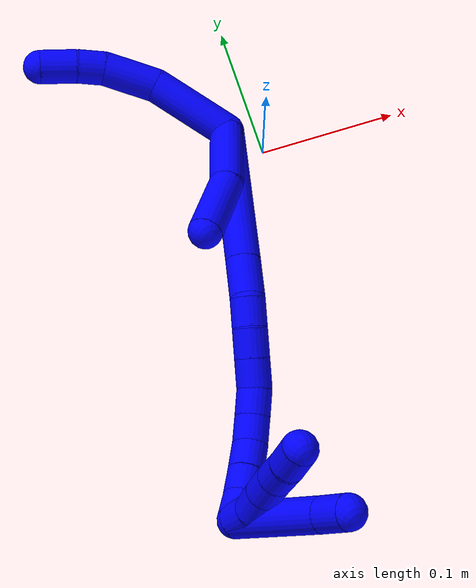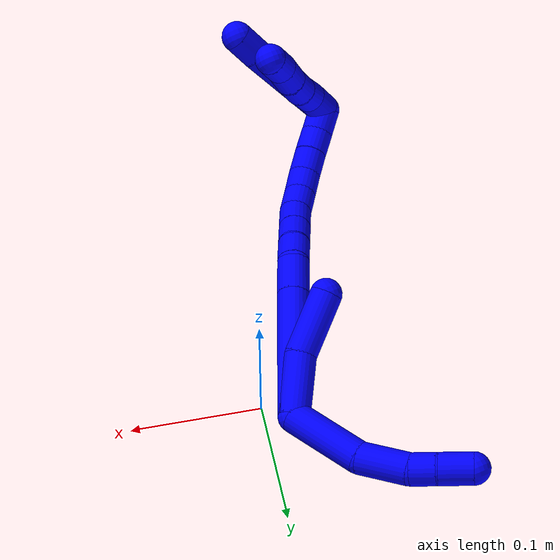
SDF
<sdf version="1.7">
 <world name="default">
  <model name="1">
   <static>0</static>
   <link name="1">
    <collision name="collision-cylinder-e_1_2_8">
     <pose>-0.013744 0.01539 -0.023625 -2.5642 -0.453554 1.32105</pose>
     <geometry><cylinder><radius>0.0125</radius><length>0.062734</length></cylinder></geometry>
     <surface>
      <friction><ode><mu>1.16</mu><mu2>1.16</mu2><slip1>0</slip1><slip2>0</slip2></ode></friction>
      <contact><ode><kp>1e+06</kp><kd>1</kd><max_vel>0</max_vel><min_depth>0.001</min_depth></ode></contact>
     </surface>
    </collision>
    <visual name="visual-cylinder-e_1_2_8">
     <pose>-0.013744 0.01539 -0.023625 -2.5642 -0.453554 1.32105</pose>
     <geometry><cylinder><radius>0.0125</radius><length>0.062734</length></cylinder></geometry>
     <material><ambient>0 0 1 1</ambient></material>
    </visual>
    <collision name="collision-cylinder-e_2_8_9">
     <pose>-0.0413 0.040262 -0.058264 -2.43081 -0.759963 1.64407</pose>
     <geometry><cylinder><radius>0.0125</radius><length>0.0401</length></cylinder></geometry>
     <surface>
      <friction><ode><mu>1.16</mu><mu2>1.16</mu2><slip1>0</slip1><slip2>0</slip2></ode></friction>
      <contact><ode><kp>1e+06</kp><kd>1</kd><max_vel>0</max_vel><min_depth>0.001</min_depth></ode></contact>
     </surface>
    </collision>
    <visual name="visual-cylinder-e_2_8_9">
     <pose>-0.0413 0.040262 -0.058264 -2.43081 -0.759963 1.64407</pose>
     <geometry><cylinder><radius>0.0125</radius><length>0.0401</length></cylinder></geometry>
     <material><ambient>0 0 1 1</ambient></material>
    </visual>
    <collision name="collision-cylinder-e_3_9_10">
     <pose>-0.063747 0.053569 -0.072931 -2.33311 -1.02124 1.83717</pose>
     <geometry><cylinder><radius>0.0125</radius><length>0.020252</length></cylinder></geometry>
     <surface>
      <friction><ode><mu>1.16</mu><mu2>1.16</mu2><slip1>0</slip1><slip2>0</slip2></ode></friction>
      <contact><ode><kp>1e+06</kp><kd>1</kd><max_vel>0</max_vel><min_depth>0.001</min_depth></ode></contact>
     </surface>
    </collision>
    <visual name="visual-cylinder-e_3_9_10">
     <pose>-0.063747 0.053569 -0.072931 -2.33311 -1.02124 1.83717</pose>
     <geometry><cylinder><radius>0.0125</radius><length>0.020252</length></cylinder></geometry>
     <material><ambient>0 0 1 1</ambient></material>
    </visual>
    <collision name="collision-cylinder-e_4_10_6">
     <pose>-0.084388 0.060916 -0.081539 -2.52391 -1.10203 2.18381</pose>
     <geometry><cylinder><radius>0.0125</radius><length>0.026914</length></cylinder></geometry>
     <surface>
      <friction><ode><mu>1.16</mu><mu2>1.16</mu2><slip1>0</slip1><slip2>0</slip2></ode></friction>
      <contact><ode><kp>1e+06</kp><kd>1</kd><max_vel>0</max_vel><min_depth>0.001</min_depth></ode></contact>
     </surface>
    </collision>
    <visual name="visual-cylinder-e_4_10_6">
     <pose>-0.084388 0.060916 -0.081539 -2.52391 -1.10203 2.18381</pose>
     <geometry><cylinder><radius>0.0125</radius><length>0.026914</length></cylinder></geometry>
     <material><ambient>0 0 1 1</ambient></material>
    </visual>
    <collision name="collision-cylinder-e_1_2_11">
     <pose>-0.012299 -0.004517 0.020655 0.21531 -0.526851 -0.058277</pose>
     <geometry><cylinder><radius>0.0125</radius><length>0.04892</length></cylinder></geometry>
     <surface>
      <friction><ode><mu>1.16</mu><mu2>1.16</mu2><slip1>0</slip1><slip2>0</slip2></ode></friction>
      <contact><ode><kp>1e+06</kp><kd>1</kd><max_vel>0</max_vel><min_depth>0.001</min_depth></ode></contact>
     </surface>
    </collision>
    <visual name="visual-cylinder-e_1_2_11">
     <pose>-0.012299 -0.004517 0.020655 0.21531 -0.526851 -0.058277</pose>
     <geometry><cylinder><radius>0.0125</radius><length>0.04892</length></cylinder></geometry>
     <material><ambient>0 0 1 1</ambient></material>
    </visual>
    <collision name="collision-cylinder-e_2_11_5">
     <pose>-0.0429 -0.009005 0.059123 -0.001628 -0.798928 0.000687</pose>
     <geometry><cylinder><radius>0.0125</radius><length>0.05108</length></cylinder></geometry>
     <surface>
      <friction><ode><mu>1.16</mu><mu2>1.16</mu2><slip1>0</slip1><slip2>0</slip2></ode></friction>
      <contact><ode><kp>1e+06</kp><kd>1</kd><max_vel>0</max_vel><min_depth>0.001</min_depth></ode></contact>
     </surface>
    </collision>
    <visual name="visual-cylinder-e_2_11_5">
     <pose>-0.0429 -0.009005 0.059123 -0.001628 -0.798928 0.000687</pose>
     <geometry><cylinder><radius>0.0125</radius><length>0.05108</length></cylinder></geometry>
     <material><ambient>0 0 1 1</ambient></material>
    </visual>
    <collision name="collision-cylinder-e_1_2_12">
     <pose>-0.022212 -0.020125 0.044117 0.427974 -0.429546 -0.094738</pose>
     <geometry><cylinder><radius>0.0125</radius><length>0.106671</length></cylinder></geometry>
     <surface>
      <friction><ode><mu>1.16</mu><mu2>1.16</mu2><slip1>0</slip1><slip2>0</slip2></ode></friction>
      <contact><ode><kp>1e+06</kp><kd>1</kd><max_vel>0</max_vel><min_depth>0.001</min_depth></ode></contact>
     </surface>
    </collision>
    <visual name="visual-cylinder-e_1_2_12">
     <pose>-0.022212 -0.020125 0.044117 0.427974 -0.429546 -0.094738</pose>
     <geometry><cylinder><radius>0.0125</radius><length>0.106671</length></cylinder></geometry>
     <material><ambient>0 0 1 1</ambient></material>
    </visual>
    <collision name="collision-cylinder-e_2_12_13">
     <pose>-0.050655 -0.04567 0.100474 0.416855 -0.435619 -0.09355</pose>
     <geometry><cylinder><radius>0.0125</radius><length>0.029533</length></cylinder></geometry>
     <surface>
      <friction><ode><mu>1.16</mu><mu2>1.16</mu2><slip1>0</slip1><slip2>0</slip2></ode></friction>
      <contact><ode><kp>1e+06</kp><kd>1</kd><max_vel>0</max_vel><min_depth>0.001</min_depth></ode></contact>
     </surface>
    </collision>
    <visual name="visual-cylinder-e_2_12_13">
     <pose>-0.050655 -0.04567 0.100474 0.416855 -0.435619 -0.09355</pose>
     <geometry><cylinder><radius>0.0125</radius><length>0.029533</length></cylinder></geometry>
     <material><ambient>0 0 1 1</ambient></material>
    </visual>
    <collision name="collision-cylinder-e_3_13_14">
     <pose>-0.061394 -0.057466 0.119731 0.737634 -0.443848 -0.173981</pose>
     <geometry><cylinder><radius>0.0125</radius><length>0.020996</length></cylinder></geometry>
     <surface>
      <friction><ode><mu>1.16</mu><mu2>1.16</mu2><slip1>0</slip1><slip2>0</slip2></ode></friction>
      <contact><ode><kp>1e+06</kp><kd>1</kd><max_vel>0</max_vel><min_depth>0.001</min_depth></ode></contact>
     </surface>
    </collision>
    <visual name="visual-cylinder-e_3_13_14">
     <pose>-0.061394 -0.057466 0.119731 0.737634 -0.443848 -0.173981</pose>
     <geometry><cylinder><radius>0.0125</radius><length>0.020996</length></cylinder></geometry>
     <material><ambient>0 0 1 1</ambient></material>
    </visual>
    <collision name="collision-cylinder-e_4_14_15">
     <pose>-0.070243 -0.07121 0.133047 0.863428 -0.421112 -0.196291</pose>
     <geometry><cylinder><radius>0.0125</radius><length>0.021241</length></cylinder></geometry>
     <surface>
      <friction><ode><mu>1.16</mu><mu2>1.16</mu2><slip1>0</slip1><slip2>0</slip2></ode></friction>
      <contact><ode><kp>1e+06</kp><kd>1</kd><max_vel>0</max_vel><min_depth>0.001</min_depth></ode></contact>
     </surface>
    </collision>
    <visual name="visual-cylinder-e_4_14_15">
     <pose>-0.070243 -0.07121 0.133047 0.863428 -0.421112 -0.196291</pose>
     <geometry><cylinder><radius>0.0125</radius><length>0.021241</length></cylinder></geometry>
     <material><ambient>0 0 1 1</ambient></material>
    </visual>
    <collision name="collision-cylinder-e_5_15_16">
     <pose>-0.078982 -0.085892 0.14581 0.847011 -0.423193 -0.193065</pose>
     <geometry><cylinder><radius>0.0125</radius><length>0.021412</length></cylinder></geometry>
     <surface>
      <friction><ode><mu>1.16</mu><mu2>1.16</mu2><slip1>0</slip1><slip2>0</slip2></ode></friction>
      <contact><ode><kp>1e+06</kp><kd>1</kd><max_vel>0</max_vel><min_depth>0.001</min_depth></ode></contact>
     </surface>
    </collision>
    <visual name="visual-cylinder-e_5_15_16">
     <pose>-0.078982 -0.085892 0.14581 0.847011 -0.423193 -0.193065</pose>
     <geometry><cylinder><radius>0.0125</radius><length>0.021412</length></cylinder></geometry>
     <material><ambient>0 0 1 1</ambient></material>
    </visual>
    <collision name="collision-cylinder-e_6_16_17">
     <pose>-0.089089 -0.098244 0.158824 0.65565 -0.604762 -0.211394</pose>
     <geometry><cylinder><radius>0.0125</radius><length>0.02009</length></cylinder></geometry>
     <surface>
      <friction><ode><mu>1.16</mu><mu2>1.16</mu2><slip1>0</slip1><slip2>0</slip2></ode></friction>
      <contact><ode><kp>1e+06</kp><kd>1</kd><max_vel>0</max_vel><min_depth>0.001</min_depth></ode></contact>
     </surface>
    </collision>
    <visual name="visual-cylinder-e_6_16_17">
     <pose>-0.089089 -0.098244 0.158824 0.65565 -0.604762 -0.211394</pose>
     <geometry><cylinder><radius>0.0125</radius><length>0.02009</length></cylinder></geometry>
     <material><ambient>0 0 1 1</ambient></material>
    </visual>
    <collision name="collision-cylinder-e_7_17_18">
     <pose>-0.100634 -0.107338 0.172439 0.521148 -0.621449 -0.170831</pose>
     <geometry><cylinder><radius>0.0125</radius><length>0.020038</length></cylinder></geometry>
     <surface>
      <friction><ode><mu>1.16</mu><mu2>1.16</mu2><slip1>0</slip1><slip2>0</slip2></ode></friction>
      <contact><ode><kp>1e+06</kp><kd>1</kd><max_vel>0</max_vel><min_depth>0.001</min_depth></ode></contact>
     </surface>
    </collision>
    <visual name="visual-cylinder-e_7_17_18">
     <pose>-0.100634 -0.107338 0.172439 0.521148 -0.621449 -0.170831</pose>
     <geometry><cylinder><radius>0.0125</radius><length>0.020038</length></cylinder></geometry>
     <material><ambient>0 0 1 1</ambient></material>
    </visual>
    <collision name="collision-cylinder-e_8_18_19">
     <pose>-0.11274 -0.113318 0.187056 0.249557 -0.677697 -0.088356</pose>
     <geometry><cylinder><radius>0.0125</radius><length>0.02001</length></cylinder></geometry>
     <surface>
      <friction><ode><mu>1.16</mu><mu2>1.16</mu2><slip1>0</slip1><slip2>0</slip2></ode></friction>
      <contact><ode><kp>1e+06</kp><kd>1</kd><max_vel>0</max_vel><min_depth>0.001</min_depth></ode></contact>
     </surface>
    </collision>
    <visual name="visual-cylinder-e_8_18_19">
     <pose>-0.11274 -0.113318 0.187056 0.249557 -0.677697 -0.088356</pose>
     <geometry><cylinder><radius>0.0125</radius><length>0.02001</length></cylinder></geometry>
     <material><ambient>0 0 1 1</ambient></material>
    </visual>
    <collision name="collision-cylinder-e_9_19_20">
     <pose>-0.125511 -0.117426 0.201891 0.291185 -0.707163 -0.108135</pose>
     <geometry><cylinder><radius>0.0125</radius><length>0.020002</length></cylinder></geometry>
     <surface>
      <friction><ode><mu>1.16</mu><mu2>1.16</mu2><slip1>0</slip1><slip2>0</slip2></ode></friction>
      <contact><ode><kp>1e+06</kp><kd>1</kd><max_vel>0</max_vel><min_depth>0.001</min_depth></ode></contact>
     </surface>
    </collision>
    <visual name="visual-cylinder-e_9_19_20">
     <pose>-0.125511 -0.117426 0.201891 0.291185 -0.707163 -0.108135</pose>
     <geometry><cylinder><radius>0.0125</radius><length>0.020002</length></cylinder></geometry>
     <material><ambient>0 0 1 1</ambient></material>
    </visual>
    <collision name="collision-cylinder-e_10_20_1">
     <pose>-0.138369 -0.119261 0.216887 -0.044993 -0.689124 0.016149</pose>
     <geometry><cylinder><radius>0.0125</radius><length>0.020007</length></cylinder></geometry>
     <surface>
      <friction><ode><mu>1.16</mu><mu2>1.16</mu2><slip1>0</slip1><slip2>0</slip2></ode></friction>
      <contact><ode><kp>1e+06</kp><kd>1</kd><max_vel>0</max_vel><min_depth>0.001</min_depth></ode></contact>
     </surface>
    </collision>
    <visual name="visual-cylinder-e_10_20_1">
     <pose>-0.138369 -0.119261 0.216887 -0.044993 -0.689124 0.016149</pose>
     <geometry><cylinder><radius>0.0125</radius><length>0.020007</length></cylinder></geometry>
     <material><ambient>0 0 1 1</ambient></material>
    </visual>
    <collision name="collision-cylinder-e_1_1_21">
     <pose>-0.13983 -0.112357 0.230344 -0.851418 0.512086 -0.236304</pose>
     <geometry><cylinder><radius>0.0125</radius><length>0.02</length></cylinder></geometry>
     <surface>
      <friction><ode><mu>1.16</mu><mu2>1.16</mu2><slip1>0</slip1><slip2>0</slip2></ode></friction>
      <contact><ode><kp>1e+06</kp><kd>1</kd><max_vel>0</max_vel><min_depth>0.001</min_depth></ode></contact>
     </surface>
    </collision>
    <visual name="visual-cylinder-e_1_1_21">
     <pose>-0.13983 -0.112357 0.230344 -0.851418 0.512086 -0.236304</pose>
     <geometry><cylinder><radius>0.0125</radius><length>0.02</length></cylinder></geometry>
     <material><ambient>0 0 1 1</ambient></material>
    </visual>
    <collision name="collision-cylinder-e_2_21_22">
     <pose>-0.13006 -0.097547 0.238948 -1.23718 0.50864 -0.365917</pose>
     <geometry><cylinder><radius>0.0125</radius><length>0.02</length></cylinder></geometry>
     <surface>
      <friction><ode><mu>1.16</mu><mu2>1.16</mu2><slip1>0</slip1><slip2>0</slip2></ode></friction>
      <contact><ode><kp>1e+06</kp><kd>1</kd><max_vel>0</max_vel><min_depth>0.001</min_depth></ode></contact>
     </surface>
    </collision>
    <visual name="visual-cylinder-e_2_21_22">
     <pose>-0.13006 -0.097547 0.238948 -1.23718 0.50864 -0.365917</pose>
     <geometry><cylinder><radius>0.0125</radius><length>0.02</length></cylinder></geometry>
     <material><ambient>0 0 1 1</ambient></material>
    </visual>
    <collision name="collision-cylinder-e_3_22_23">
     <pose>-0.120867 -0.081127 0.245629 -1.13316 0.447075 -0.287251</pose>
     <geometry><cylinder><radius>0.0125</radius><length>0.02</length></cylinder></geometry>
     <surface>
      <friction><ode><mu>1.16</mu><mu2>1.16</mu2><slip1>0</slip1><slip2>0</slip2></ode></friction>
      <contact><ode><kp>1e+06</kp><kd>1</kd><max_vel>0</max_vel><min_depth>0.001</min_depth></ode></contact>
     </surface>
    </collision>
    <visual name="visual-cylinder-e_3_22_23">
     <pose>-0.120867 -0.081127 0.245629 -1.13316 0.447075 -0.287251</pose>
     <geometry><cylinder><radius>0.0125</radius><length>0.02</length></cylinder></geometry>
     <material><ambient>0 0 1 1</ambient></material>
    </visual>
    <collision name="collision-cylinder-e_4_23_24">
     <pose>-0.112856 -0.064922 0.25412 -1.04454 0.377687 -0.219129</pose>
     <geometry><cylinder><radius>0.0125</radius><length>0.02</length></cylinder></geometry>
     <surface>
      <friction><ode><mu>1.16</mu><mu2>1.16</mu2><slip1>0</slip1><slip2>0</slip2></ode></friction>
      <contact><ode><kp>1e+06</kp><kd>1</kd><max_vel>0</max_vel><min_depth>0.001</min_depth></ode></contact>
     </surface>
    </collision>
    <visual name="visual-cylinder-e_4_23_24">
     <pose>-0.112856 -0.064922 0.25412 -1.04454 0.377687 -0.219129</pose>
     <geometry><cylinder><radius>0.0125</radius><length>0.02</length></cylinder></geometry>
     <material><ambient>0 0 1 1</ambient></material>
    </visual>
    <collision name="collision-cylinder-e_5_24_4">
     <pose>-0.104659 -0.048707 0.262365 -1.15852 0.467745 -0.309174</pose>
     <geometry><cylinder><radius>0.0125</radius><length>0.02</length></cylinder></geometry>
     <surface>
      <friction><ode><mu>1.16</mu><mu2>1.16</mu2><slip1>0</slip1><slip2>0</slip2></ode></friction>
      <contact><ode><kp>1e+06</kp><kd>1</kd><max_vel>0</max_vel><min_depth>0.001</min_depth></ode></contact>
     </surface>
    </collision>
    <visual name="visual-cylinder-e_5_24_4">
     <pose>-0.104659 -0.048707 0.262365 -1.15852 0.467745 -0.309174</pose>
     <geometry><cylinder><radius>0.0125</radius><length>0.02</length></cylinder></geometry>
     <material><ambient>0 0 1 1</ambient></material>
    </visual>
    <collision name="collision-cylinder-e_1_1_25">
     <pose>-0.123845 -0.103707 0.25329 -0.48739 0.571583 -0.145857</pose>
     <geometry><cylinder><radius>0.0125</radius><length>0.077215</length></cylinder></geometry>
     <surface>
      <friction><ode><mu>1.16</mu><mu2>1.16</mu2><slip1>0</slip1><slip2>0</slip2></ode></friction>
      <contact><ode><kp>1e+06</kp><kd>1</kd><max_vel>0</max_vel><min_depth>0.001</min_depth></ode></contact>
     </surface>
    </collision>
    <visual name="visual-cylinder-e_1_1_25">
     <pose>-0.123845 -0.103707 0.25329 -0.48739 0.571583 -0.145857</pose>
     <geometry><cylinder><radius>0.0125</radius><length>0.077215</length></cylinder></geometry>
     <material><ambient>0 0 1 1</ambient></material>
    </visual>
    <collision name="collision-cylinder-e_2_25_3">
     <pose>-0.097186 -0.083448 0.290401 -0.540414 0.531416 -0.150472</pose>
     <geometry><cylinder><radius>0.0125</radius><length>0.022785</length></cylinder></geometry>
     <surface>
      <friction><ode><mu>1.16</mu><mu2>1.16</mu2><slip1>0</slip1><slip2>0</slip2></ode></friction>
      <contact><ode><kp>1e+06</kp><kd>1</kd><max_vel>0</max_vel><min_depth>0.001</min_depth></ode></contact>
     </surface>
    </collision>
    <visual name="visual-cylinder-e_2_25_3">
     <pose>-0.097186 -0.083448 0.290401 -0.540414 0.531416 -0.150472</pose>
     <geometry><cylinder><radius>0.0125</radius><length>0.022785</length></cylinder></geometry>
     <material><ambient>0 0 1 1</ambient></material>
    </visual>
    <collision name="collision-sphere-3">
     <pose>-0.091413 -0.078395 0.298823 0 -0 0</pose>
     <geometry><sphere><radius>0.0125</radius></sphere></geometry>
     <surface>
      <friction><ode><mu>1.16</mu><mu2>1.16</mu2><slip1>0</slip1><slip2>0</slip2></ode></friction>
      <contact><ode><kp>1e+06</kp><kd>1</kd><max_vel>0</max_vel><min_depth>0.001</min_depth></ode></contact>
     </surface>
    </collision>
    <visual name="visual-sphere-3">
     <pose>-0.091413 -0.078395 0.298823 0 -0 0</pose>
     <geometry><sphere><radius>0.0125</radius></sphere></geometry>
     <material><ambient>0 0 1 1</ambient></material>
    </visual>
    <collision name="collision-sphere-25">
     <pose>-0.102959 -0.0885 0.281979 0 -0 0</pose>
     <geometry><sphere><radius>0.0125</radius></sphere></geometry>
     <surface>
      <friction><ode><mu>1.16</mu><mu2>1.16</mu2><slip1>0</slip1><slip2>0</slip2></ode></friction>
      <contact><ode><kp>1e+06</kp><kd>1</kd><max_vel>0</max_vel><min_depth>0.001</min_depth></ode></contact>
     </surface>
    </collision>
    <visual name="visual-sphere-25">
     <pose>-0.102959 -0.0885 0.281979 0 -0 0</pose>
     <geometry><sphere><radius>0.0125</radius></sphere></geometry>
     <material><ambient>0 0 1 1</ambient></material>
    </visual>
    <collision name="collision-sphere-4">
     <pose>-0.100151 -0.040529 0.265942 0 -0 0</pose>
     <geometry><sphere><radius>0.0125</radius></sphere></geometry>
     <surface>
      <friction><ode><mu>1.16</mu><mu2>1.16</mu2><slip1>0</slip1><slip2>0</slip2></ode></friction>
      <contact><ode><kp>1e+06</kp><kd>1</kd><max_vel>0</max_vel><min_depth>0.001</min_depth></ode></contact>
     </surface>
    </collision>
    <visual name="visual-sphere-4">
     <pose>-0.100151 -0.040529 0.265942 0 -0 0</pose>
     <geometry><sphere><radius>0.0125</radius></sphere></geometry>
     <material><ambient>0 0 1 1</ambient></material>
    </visual>
    <collision name="collision-sphere-24">
     <pose>-0.109168 -0.056885 0.258789 0 -0 0</pose>
     <geometry><sphere><radius>0.0125</radius></sphere></geometry>
     <surface>
      <friction><ode><mu>1.16</mu><mu2>1.16</mu2><slip1>0</slip1><slip2>0</slip2></ode></friction>
      <contact><ode><kp>1e+06</kp><kd>1</kd><max_vel>0</max_vel><min_depth>0.001</min_depth></ode></contact>
     </surface>
    </collision>
    <visual name="visual-sphere-24">
     <pose>-0.109168 -0.056885 0.258789 0 -0 0</pose>
     <geometry><sphere><radius>0.0125</radius></sphere></geometry>
     <material><ambient>0 0 1 1</ambient></material>
    </visual>
    <collision name="collision-sphere-23">
     <pose>-0.116544 -0.07296 0.249451 0 -0 0</pose>
     <geometry><sphere><radius>0.0125</radius></sphere></geometry>
     <surface>
      <friction><ode><mu>1.16</mu><mu2>1.16</mu2><slip1>0</slip1><slip2>0</slip2></ode></friction>
      <contact><ode><kp>1e+06</kp><kd>1</kd><max_vel>0</max_vel><min_depth>0.001</min_depth></ode></contact>
     </surface>
    </collision>
    <visual name="visual-sphere-23">
     <pose>-0.116544 -0.07296 0.249451 0 -0 0</pose>
     <geometry><sphere><radius>0.0125</radius></sphere></geometry>
     <material><ambient>0 0 1 1</ambient></material>
    </visual>
    <collision name="collision-sphere-22">
     <pose>-0.12519 -0.089295 0.241808 0 -0 0</pose>
     <geometry><sphere><radius>0.0125</radius></sphere></geometry>
     <surface>
      <friction><ode><mu>1.16</mu><mu2>1.16</mu2><slip1>0</slip1><slip2>0</slip2></ode></friction>
      <contact><ode><kp>1e+06</kp><kd>1</kd><max_vel>0</max_vel><min_depth>0.001</min_depth></ode></contact>
     </surface>
    </collision>
    <visual name="visual-sphere-22">
     <pose>-0.12519 -0.089295 0.241808 0 -0 0</pose>
     <geometry><sphere><radius>0.0125</radius></sphere></geometry>
     <material><ambient>0 0 1 1</ambient></material>
    </visual>
    <collision name="collision-sphere-21">
     <pose>-0.13493 -0.1058 0.236088 0 -0 0</pose>
     <geometry><sphere><radius>0.0125</radius></sphere></geometry>
     <surface>
      <friction><ode><mu>1.16</mu><mu2>1.16</mu2><slip1>0</slip1><slip2>0</slip2></ode></friction>
      <contact><ode><kp>1e+06</kp><kd>1</kd><max_vel>0</max_vel><min_depth>0.001</min_depth></ode></contact>
     </surface>
    </collision>
    <visual name="visual-sphere-21">
     <pose>-0.13493 -0.1058 0.236088 0 -0 0</pose>
     <geometry><sphere><radius>0.0125</radius></sphere></geometry>
     <material><ambient>0 0 1 1</ambient></material>
    </visual>
    <collision name="collision-sphere-1">
     <pose>-0.14473 -0.118914 0.2246 0 -0 0</pose>
     <geometry><sphere><radius>0.0125</radius></sphere></geometry>
     <surface>
      <friction><ode><mu>1.16</mu><mu2>1.16</mu2><slip1>0</slip1><slip2>0</slip2></ode></friction>
      <contact><ode><kp>1e+06</kp><kd>1</kd><max_vel>0</max_vel><min_depth>0.001</min_depth></ode></contact>
     </surface>
    </collision>
    <visual name="visual-sphere-1">
     <pose>-0.14473 -0.118914 0.2246 0 -0 0</pose>
     <geometry><sphere><radius>0.0125</radius></sphere></geometry>
     <material><ambient>0 0 1 1</ambient></material>
    </visual>
    <collision name="collision-sphere-11">
     <pose>-0.024597 -0.009034 0.041309 0 -0 0</pose>
     <geometry><sphere><radius>0.0125</radius></sphere></geometry>
     <surface>
      <friction><ode><mu>1.16</mu><mu2>1.16</mu2><slip1>0</slip1><slip2>0</slip2></ode></friction>
      <contact><ode><kp>1e+06</kp><kd>1</kd><max_vel>0</max_vel><min_depth>0.001</min_depth></ode></contact>
     </surface>
    </collision>
    <visual name="visual-sphere-11">
     <pose>-0.024597 -0.009034 0.041309 0 -0 0</pose>
     <geometry><sphere><radius>0.0125</radius></sphere></geometry>
     <material><ambient>0 0 1 1</ambient></material>
    </visual>
    <collision name="collision-sphere-6">
     <pose>-0.096393 0.064437 -0.086496 0 -0 0</pose>
     <geometry><sphere><radius>0.0125</radius></sphere></geometry>
     <surface>
      <friction><ode><mu>1.16</mu><mu2>1.16</mu2><slip1>0</slip1><slip2>0</slip2></ode></friction>
      <contact><ode><kp>1e+06</kp><kd>1</kd><max_vel>0</max_vel><min_depth>0.001</min_depth></ode></contact>
     </surface>
    </collision>
    <visual name="visual-sphere-6">
     <pose>-0.096393 0.064437 -0.086496 0 -0 0</pose>
     <geometry><sphere><radius>0.0125</radius></sphere></geometry>
     <material><ambient>0 0 1 1</ambient></material>
    </visual>
    <collision name="collision-sphere-10">
     <pose>-0.072382 0.057395 -0.076583 0 -0 0</pose>
     <geometry><sphere><radius>0.0125</radius></sphere></geometry>
     <surface>
      <friction><ode><mu>1.16</mu><mu2>1.16</mu2><slip1>0</slip1><slip2>0</slip2></ode></friction>
      <contact><ode><kp>1e+06</kp><kd>1</kd><max_vel>0</max_vel><min_depth>0.001</min_depth></ode></contact>
     </surface>
    </collision>
    <visual name="visual-sphere-10">
     <pose>-0.072382 0.057395 -0.076583 0 -0 0</pose>
     <geometry><sphere><radius>0.0125</radius></sphere></geometry>
     <material><ambient>0 0 1 1</ambient></material>
    </visual>
    <collision name="collision-sphere-9">
     <pose>-0.055112 0.049744 -0.069278 0 -0 0</pose>
     <geometry><sphere><radius>0.0125</radius></sphere></geometry>
     <surface>
      <friction><ode><mu>1.16</mu><mu2>1.16</mu2><slip1>0</slip1><slip2>0</slip2></ode></friction>
      <contact><ode><kp>1e+06</kp><kd>1</kd><max_vel>0</max_vel><min_depth>0.001</min_depth></ode></contact>
     </surface>
    </collision>
    <visual name="visual-sphere-9">
     <pose>-0.055112 0.049744 -0.069278 0 -0 0</pose>
     <geometry><sphere><radius>0.0125</radius></sphere></geometry>
     <material><ambient>0 0 1 1</ambient></material>
    </visual>
    <collision name="collision-sphere-2">
     <geometry><sphere><radius>0.0125</radius></sphere></geometry>
     <surface>
      <friction><ode><mu>1.16</mu><mu2>1.16</mu2><slip1>0</slip1><slip2>0</slip2></ode></friction>
      <contact><ode><kp>1e+06</kp><kd>1</kd><max_vel>0</max_vel><min_depth>0.001</min_depth></ode></contact>
     </surface>
    </collision>
    <visual name="visual-sphere-2">
     <geometry><sphere><radius>0.0125</radius></sphere></geometry>
     <material><ambient>0 0 1 1</ambient></material>
    </visual>
    <collision name="collision-sphere-19">
     <pose>-0.119014 -0.115243 0.194609 0 -0 0</pose>
     <geometry><sphere><radius>0.0125</radius></sphere></geometry>
     <surface>
      <friction><ode><mu>1.16</mu><mu2>1.16</mu2><slip1>0</slip1><slip2>0</slip2></ode></friction>
      <contact><ode><kp>1e+06</kp><kd>1</kd><max_vel>0</max_vel><min_depth>0.001</min_depth></ode></contact>
     </surface>
    </collision>
    <visual name="visual-sphere-19">
     <pose>-0.119014 -0.115243 0.194609 0 -0 0</pose>
     <geometry><sphere><radius>0.0125</radius></sphere></geometry>
     <material><ambient>0 0 1 1</ambient></material>
    </visual>
    <collision name="collision-sphere-8">
     <pose>-0.027488 0.03078 -0.04725 0 -0 0</pose>
     <geometry><sphere><radius>0.0125</radius></sphere></geometry>
     <surface>
      <friction><ode><mu>1.16</mu><mu2>1.16</mu2><slip1>0</slip1><slip2>0</slip2></ode></friction>
      <contact><ode><kp>1e+06</kp><kd>1</kd><max_vel>0</max_vel><min_depth>0.001</min_depth></ode></contact>
     </surface>
    </collision>
    <visual name="visual-sphere-8">
     <pose>-0.027488 0.03078 -0.04725 0 -0 0</pose>
     <geometry><sphere><radius>0.0125</radius></sphere></geometry>
     <material><ambient>0 0 1 1</ambient></material>
    </visual>
    <collision name="collision-sphere-5">
     <pose>-0.061202 -0.008976 0.076937 0 -0 0</pose>
     <geometry><sphere><radius>0.0125</radius></sphere></geometry>
     <surface>
      <friction><ode><mu>1.16</mu><mu2>1.16</mu2><slip1>0</slip1><slip2>0</slip2></ode></friction>
      <contact><ode><kp>1e+06</kp><kd>1</kd><max_vel>0</max_vel><min_depth>0.001</min_depth></ode></contact>
     </surface>
    </collision>
    <visual name="visual-sphere-5">
     <pose>-0.061202 -0.008976 0.076937 0 -0 0</pose>
     <geometry><sphere><radius>0.0125</radius></sphere></geometry>
     <material><ambient>0 0 1 1</ambient></material>
    </visual>
    <collision name="collision-sphere-12">
     <pose>-0.044424 -0.040249 0.088233 0 -0 0</pose>
     <geometry><sphere><radius>0.0125</radius></sphere></geometry>
     <surface>
      <friction><ode><mu>1.16</mu><mu2>1.16</mu2><slip1>0</slip1><slip2>0</slip2></ode></friction>
      <contact><ode><kp>1e+06</kp><kd>1</kd><max_vel>0</max_vel><min_depth>0.001</min_depth></ode></contact>
     </surface>
    </collision>
    <visual name="visual-sphere-12">
     <pose>-0.044424 -0.040249 0.088233 0 -0 0</pose>
     <geometry><sphere><radius>0.0125</radius></sphere></geometry>
     <material><ambient>0 0 1 1</ambient></material>
    </visual>
    <collision name="collision-sphere-13">
     <pose>-0.056886 -0.05109 0.112715 0 -0 0</pose>
     <geometry><sphere><radius>0.0125</radius></sphere></geometry>
     <surface>
      <friction><ode><mu>1.16</mu><mu2>1.16</mu2><slip1>0</slip1><slip2>0</slip2></ode></friction>
      <contact><ode><kp>1e+06</kp><kd>1</kd><max_vel>0</max_vel><min_depth>0.001</min_depth></ode></contact>
     </surface>
    </collision>
    <visual name="visual-sphere-13">
     <pose>-0.056886 -0.05109 0.112715 0 -0 0</pose>
     <geometry><sphere><radius>0.0125</radius></sphere></geometry>
     <material><ambient>0 0 1 1</ambient></material>
    </visual>
    <collision name="collision-sphere-14">
     <pose>-0.065902 -0.063843 0.126748 0 -0 0</pose>
     <geometry><sphere><radius>0.0125</radius></sphere></geometry>
     <surface>
      <friction><ode><mu>1.16</mu><mu2>1.16</mu2><slip1>0</slip1><slip2>0</slip2></ode></friction>
      <contact><ode><kp>1e+06</kp><kd>1</kd><max_vel>0</max_vel><min_depth>0.001</min_depth></ode></contact>
     </surface>
    </collision>
    <visual name="visual-sphere-14">
     <pose>-0.065902 -0.063843 0.126748 0 -0 0</pose>
     <geometry><sphere><radius>0.0125</radius></sphere></geometry>
     <material><ambient>0 0 1 1</ambient></material>
    </visual>
    <collision name="collision-sphere-15">
     <pose>-0.074585 -0.078577 0.139345 0 -0 0</pose>
     <geometry><sphere><radius>0.0125</radius></sphere></geometry>
     <surface>
      <friction><ode><mu>1.16</mu><mu2>1.16</mu2><slip1>0</slip1><slip2>0</slip2></ode></friction>
      <contact><ode><kp>1e+06</kp><kd>1</kd><max_vel>0</max_vel><min_depth>0.001</min_depth></ode></contact>
     </surface>
    </collision>
    <visual name="visual-sphere-15">
     <pose>-0.074585 -0.078577 0.139345 0 -0 0</pose>
     <geometry><sphere><radius>0.0125</radius></sphere></geometry>
     <material><ambient>0 0 1 1</ambient></material>
    </visual>
    <collision name="collision-sphere-16">
     <pose>-0.083378 -0.093206 0.152274 0 -0 0</pose>
     <geometry><sphere><radius>0.0125</radius></sphere></geometry>
     <surface>
      <friction><ode><mu>1.16</mu><mu2>1.16</mu2><slip1>0</slip1><slip2>0</slip2></ode></friction>
      <contact><ode><kp>1e+06</kp><kd>1</kd><max_vel>0</max_vel><min_depth>0.001</min_depth></ode></contact>
     </surface>
    </collision>
    <visual name="visual-sphere-16">
     <pose>-0.083378 -0.093206 0.152274 0 -0 0</pose>
     <geometry><sphere><radius>0.0125</radius></sphere></geometry>
     <material><ambient>0 0 1 1</ambient></material>
    </visual>
    <collision name="collision-sphere-17">
     <pose>-0.094801 -0.103282 0.165374 0 -0 0</pose>
     <geometry><sphere><radius>0.0125</radius></sphere></geometry>
     <surface>
      <friction><ode><mu>1.16</mu><mu2>1.16</mu2><slip1>0</slip1><slip2>0</slip2></ode></friction>
      <contact><ode><kp>1e+06</kp><kd>1</kd><max_vel>0</max_vel><min_depth>0.001</min_depth></ode></contact>
     </surface>
    </collision>
    <visual name="visual-sphere-17">
     <pose>-0.094801 -0.103282 0.165374 0 -0 0</pose>
     <geometry><sphere><radius>0.0125</radius></sphere></geometry>
     <material><ambient>0 0 1 1</ambient></material>
    </visual>
    <collision name="collision-sphere-18">
     <pose>-0.106467 -0.111393 0.179503 0 -0 0</pose>
     <geometry><sphere><radius>0.0125</radius></sphere></geometry>
     <surface>
      <friction><ode><mu>1.16</mu><mu2>1.16</mu2><slip1>0</slip1><slip2>0</slip2></ode></friction>
      <contact><ode><kp>1e+06</kp><kd>1</kd><max_vel>0</max_vel><min_depth>0.001</min_depth></ode></contact>
     </surface>
    </collision>
    <visual name="visual-sphere-18">
     <pose>-0.106467 -0.111393 0.179503 0 -0 0</pose>
     <geometry><sphere><radius>0.0125</radius></sphere></geometry>
     <material><ambient>0 0 1 1</ambient></material>
    </visual>
    <collision name="collision-sphere-20">
     <pose>-0.132009 -0.119609 0.209174 0 -0 0</pose>
     <geometry><sphere><radius>0.0125</radius></sphere></geometry>
     <surface>
      <friction><ode><mu>1.16</mu><mu2>1.16</mu2><slip1>0</slip1><slip2>0</slip2></ode></friction>
      <contact><ode><kp>1e+06</kp><kd>1</kd><max_vel>0</max_vel><min_depth>0.001</min_depth></ode></contact>
     </surface>
    </collision>
    <visual name="visual-sphere-20">
     <pose>-0.132009 -0.119609 0.209174 0 -0 0</pose>
     <geometry><sphere><radius>0.0125</radius></sphere></geometry>
     <material><ambient>0 0 1 1</ambient></material>
    </visual>
    <inertial>
     <pose>-0.069993 -0.043413 0.10966 0 -0 0</pose>
     <mass>0.75</mass>
     <inertia>
      <ixx>0.000166</ixx>
      <ixy>0</ixy>
      <ixz>0</ixz>
      <iyy>0.000199</iyy>
      <iyz>0</iyz>
      <izz>9.4e-05</izz>
     </inertia>
    </inertial>
   </link>
   <pose>-0.021265 0.020174 0.011545 1.03288 0.051841 0.225125</pose>
  </model>
 </world>
</sdf>
